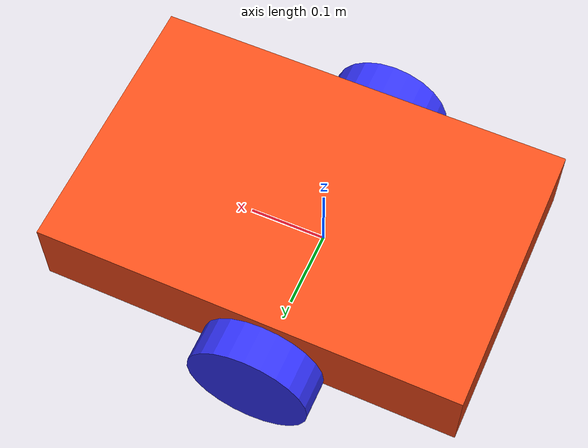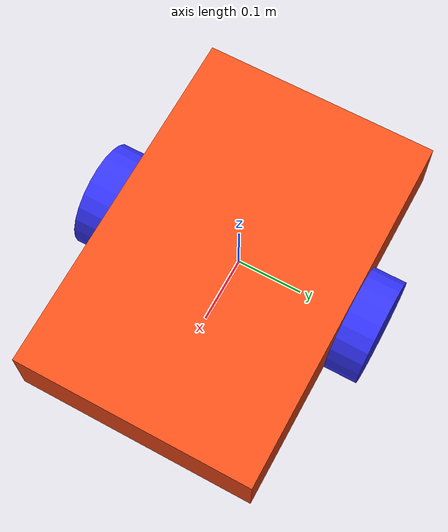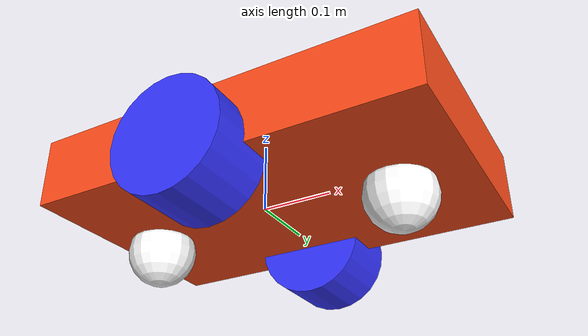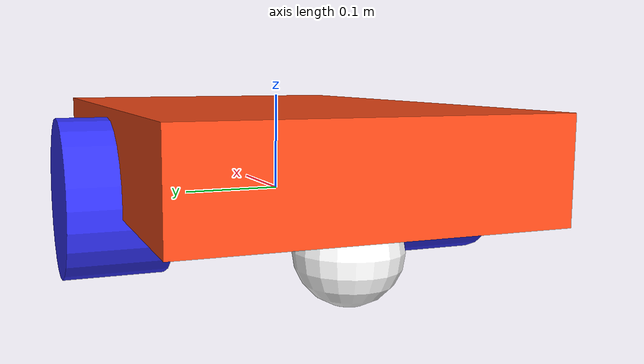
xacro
<?xml version="1.0"?>
<robot xmlns:xacro="http://www.ros.org/wiki/xacro" name="pixy">

    <xacro:include filename="inertial_macros.xacro"/>

    <xacro:property name="chassis_length" value="0.55"/>
    <xacro:property name="chassis_width" value="0.36"/>
    <xacro:property name="chassis_height" value="0.1"/>
    <xacro:property name="chassis_mass" value="5.0"/>
    <xacro:property name="wheel_radius" value="0.08"/>
    <xacro:property name="wheel_thickness" value="0.1"/>
    <xacro:property name="wheel_mass" value="1"/>
    <xacro:property name="wheel_offset_x" value="0.25"/>
    <xacro:property name="wheel_offset_y" value="0.18"/>
    <xacro:property name="wheel_offset_z" value="0.01"/>
    <xacro:property name="caster_wheel_radius" value="0.05"/>
    <xacro:property name="caster_wheel_mass" value="0.01"/>
    <xacro:property name="caster_wheel_offset_x" value="0.07"/>
    <xacro:property name="caster_wheel_offset_z" value="${wheel_offset_z - wheel_radius + caster_wheel_radius}"/>

    <material name="white">
        <color rgba="1 1 1 1" />
    </material>

    <material name="orange">
        <color rgba="1 0.3 0.1 1"/>
    </material>

    <material name="blue">
        <color rgba="0.2 0.2 1 1"/>
    </material>

    <material name="black">
        <color rgba="0 0 0 1"/>
    </material>

    <material name="red">
        <color rgba="1 0 0 1"/>
    </material>

    <!-- BASE LINK -->

    <link name="base_link">

    </link>

    <!-- BASE_FOOTPRINT LINK -->

    <joint name="base_footprint_joint" type="fixed">
        <parent link="base_link"/>
        <child link="base_footprint"/>
        <origin xyz="0 0 0" rpy="0 0 0"/>
    </joint>

    <link name="base_footprint">
    </link>

    <!-- CHASSIS LINK -->

    <joint name="chassis_joint" type="fixed">
        <parent link="base_link"/>
        <child link="chassis"/>
        <origin xyz="${-wheel_offset_x} 0 ${-wheel_offset_z}"/>
    </joint>

    <link name="chassis">
        <visual>
            <origin xyz="${chassis_length/2} 0 ${chassis_height/2}"/>
            <geometry>
                <box size="${chassis_length} ${chassis_width} ${chassis_height}"/>
            </geometry>
            <material name="orange"/>
        </visual>
        <collision>
            <origin xyz="${chassis_length/2} 0 ${chassis_height/2}"/>
            <geometry>
                <box size="${chassis_length} ${chassis_width} ${chassis_height}"/>
            </geometry>
        </collision>
        <xacro:inertial_box mass="0.5" x="${chassis_length}" y="${chassis_width}" z="${chassis_height}">
            <origin xyz="${chassis_length/2} 0 ${chassis_height/2}" rpy="0 0 0"/>
        </xacro:inertial_box>
    </link>

    <gazebo reference="chassis">
        <material>Gazebo/Orange</material>
    </gazebo>

    <!-- LEFT WHEEL LINK -->

    <joint name="left_wheel_joint" type="continuous">
        <parent link="base_link"/>
        <child link="left_wheel"/>
        <origin xyz="0 ${wheel_offset_y} 0" rpy="-${pi/2} 0 0" />
        <axis xyz="0 0 1"/>
        <dynamics damping="0.1"/>
        <limit effort="100.0" velocity="10.0"/>
        <pid kp="100.0" ki="0.0" kd="10.0"/>
        <encoder>
            <type>incremental</type>
            <joint_name>left_wheel_joint</joint_name>
            <resolution>1000</resolution>
            <mechanical_reduction>10.0</mechanical_reduction>
        </encoder>
    </joint>

    <link name="left_wheel">
        <visual>
            <geometry>
                <cylinder radius="${wheel_radius}" length="${wheel_thickness}"/>
            </geometry>
            <material name="blue"/>
        </visual>
        <collision>
            <geometry>
                <sphere radius="${wheel_radius}"/>
            </geometry>
        </collision>
        <xacro:inertial_cylinder mass="${wheel_mass}" length="${wheel_thickness}" radius="${wheel_radius}">
            <origin xyz="0 0 0" rpy="0 0 0"/>
        </xacro:inertial_cylinder>
    </link>

    <gazebo reference="left_wheel">
        <material>Gazebo/Blue</material>
    </gazebo>

    <!-- RIGHT WHEEL LINK -->

    <joint name="right_wheel_joint" type="continuous">
        <parent link="base_link"/>
        <child link="right_wheel"/>
        <origin xyz="0 ${-wheel_offset_y} 0" rpy="${pi/2} 0 0" />
        <axis xyz="0 0 -1"/> <dynamics damping="0.1"/>
        <limit effort="100.0" velocity="10.0"/>
        <pid kp="100.0" ki="0.0" kd="10.0"/>
        <encoder>
            <type>incremental</type>
            <joint_name>right_wheel_joint</joint_name>
            <resolution>1000</resolution>
            <mechanical_reduction>10.0</mechanical_reduction>
        </encoder>

    </joint>

    <link name="right_wheel">
        <visual>
            <geometry>
                <cylinder radius="${wheel_radius}" length="${wheel_thickness}"/>
            </geometry>
            <material name="blue"/>
        </visual>
        <collision>
            <geometry>
                <sphere radius="${wheel_radius}"/>
            </geometry>
        </collision>
        <xacro:inertial_cylinder mass="${wheel_mass}" length="${wheel_thickness}" radius="${wheel_radius}">
            <origin xyz="0 0 0" rpy="0 0 0"/>
        </xacro:inertial_cylinder>
    </link>

    <gazebo reference="right_wheel">
        <material>Gazebo/Blue</material>
    </gazebo>

    <!-- CASTER WHEEL LINK -->

    <joint name="caster_wheel_joint" type="fixed">
        <parent link="chassis"/>
        <child link="caster_wheel"/>
        <origin xyz="${caster_wheel_offset_x} 0 ${caster_wheel_offset_z}"/>
    </joint>

    <link name="caster_wheel">
        <visual>
            <geometry>
                <sphere radius="${caster_wheel_radius}"/>
            </geometry>
            <material name="white"/>
        </visual>
        <collision>
            <geometry>
                <sphere radius="${caster_wheel_radius}"/>
            </geometry>
        </collision>
        <xacro:inertial_sphere mass="${caster_wheel_mass}" radius="${caster_wheel_radius}">
            <origin xyz="0 0 0" rpy="0 0 0"/>
        </xacro:inertial_sphere>
    </link>

      <!-- CASTER WHEEL LINK 2 -->

    <joint name="caster_wheel_joint2" type="fixed">
        <parent link="chassis"/>
        <child link="caster_wheel2"/>
        <origin xyz="0.45 0 ${caster_wheel_offset_z}"/>
    </joint>

    <link name="caster_wheel2">
        <visual>
            <geometry>
                <sphere radius="${caster_wheel_radius}"/>
            </geometry>
            <material name="white"/>
        </visual>
        <collision>
            <geometry>
                <sphere radius="${caster_wheel_radius}"/>
            </geometry>
        </collision>
        <xacro:inertial_sphere mass="${caster_wheel_mass}" radius="${caster_wheel_radius}">
            <origin xyz="0 0 0" rpy="0 0 0"/>
        </xacro:inertial_sphere>
    </link>

    <gazebo reference="caster_wheel">
        <material>Gazebo/White</material>
        <mu1 value="0.001"/>
        <mu2 value="0.001"/>
    </gazebo>

</robot>
